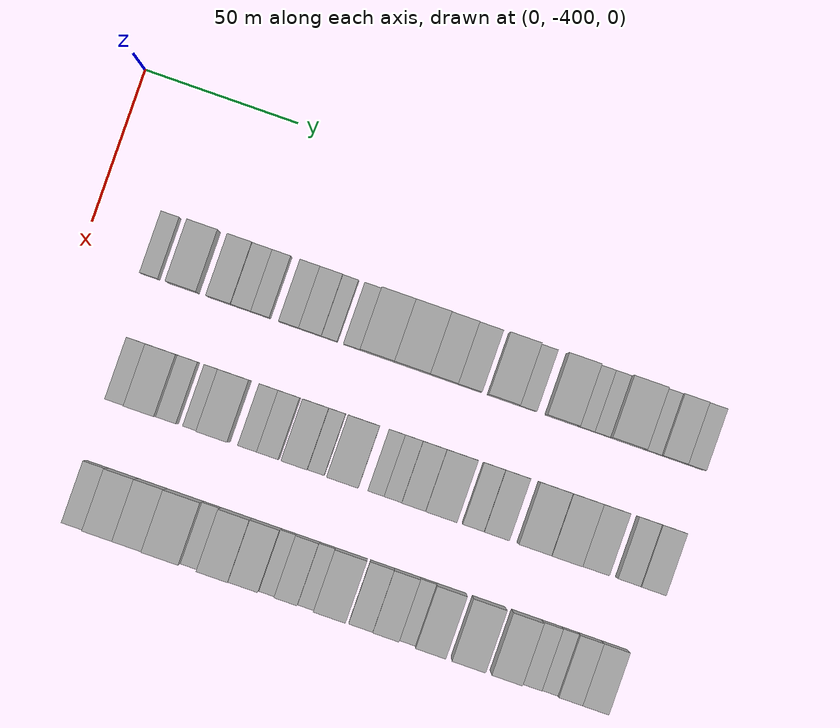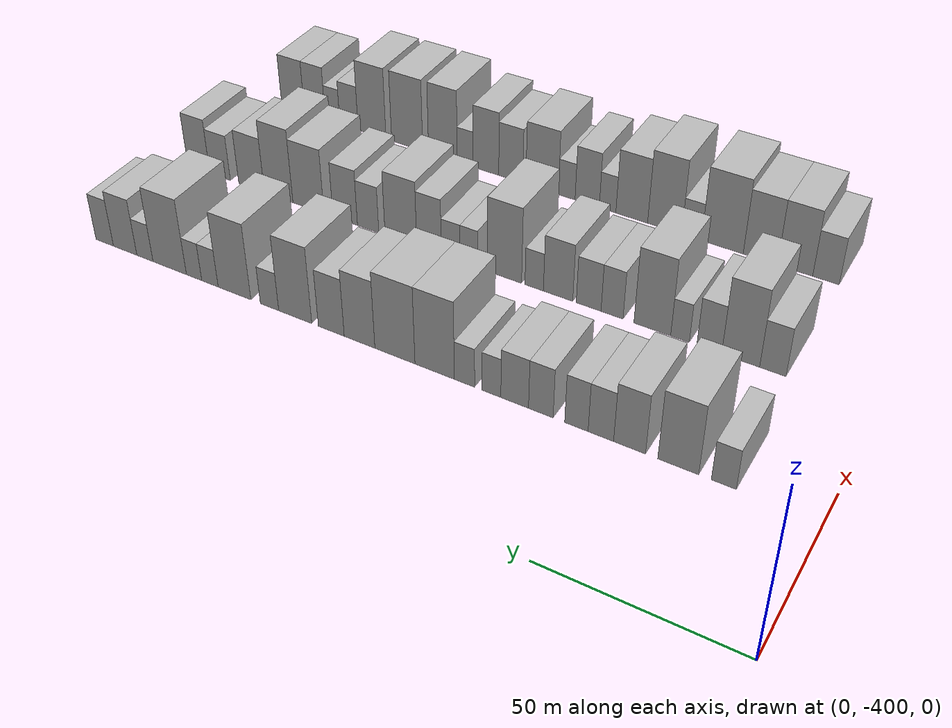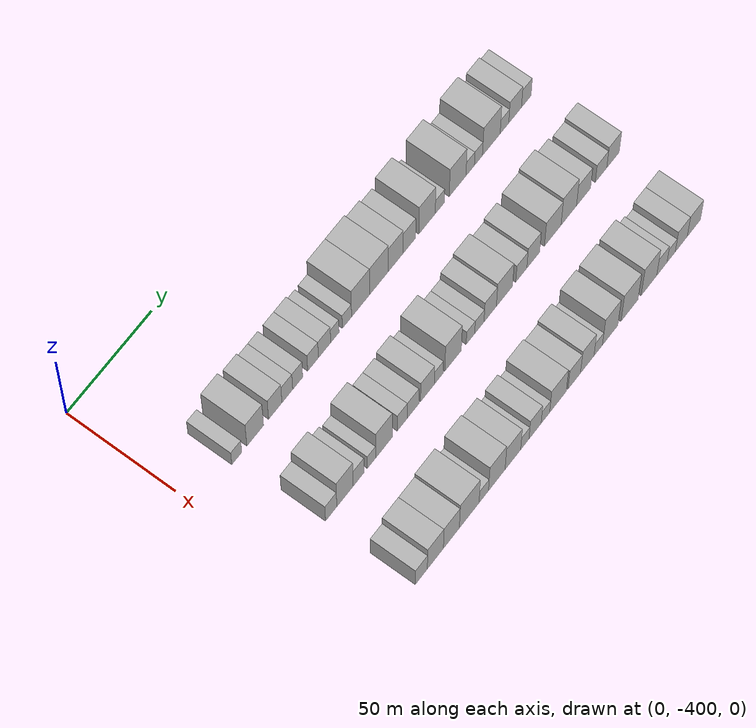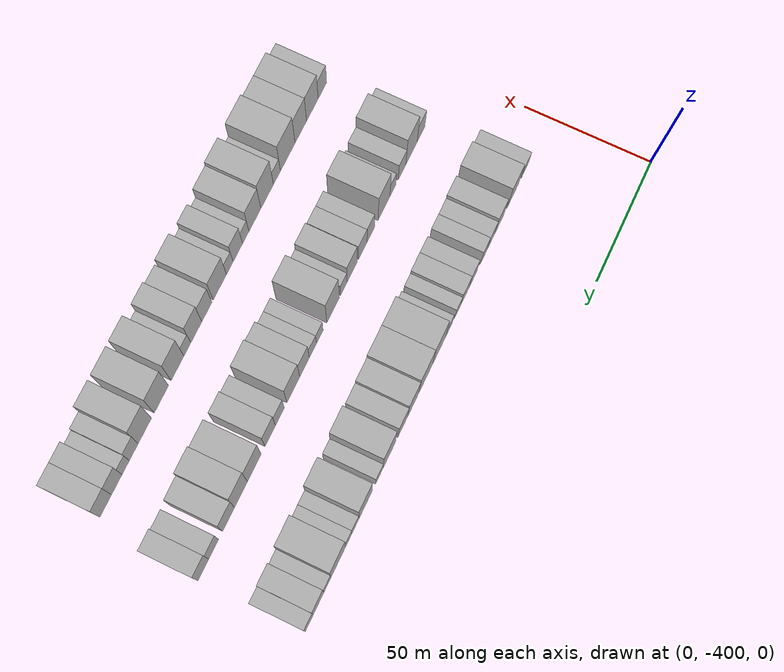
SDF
<sdf version="1.6">
 <world name="default">
  <model name="building_1">
   <static>1</static>
   <pose>50.0000 -377.0540 0 0.000000 0.000000 0.000000</pose>
   <link name="link">
    <pose>0 0 6.00 0 0 0</pose>
    <collision name="collision"><geometry><box><size>20.0000 5.8920 12.0000</size></box></geometry></collision>
    <visual name="visual">
     <cast_shadows>0</cast_shadows>
     <geometry><box><size>20.0000 5.8920 12.0000</size></box></geometry>
     <material>
      <script>
       <uri>model://HANNAS_wall/materials/scripts</uri>
       <uri>model://HANNAS_wall/materials/textures</uri>
       <name>vrc/HANNAS_wall</name>
      </script>
     </material>
    </visual>
   </link>
  </model>
  <model name="building_2">
   <static>1</static>
   <pose>50.0000 -366.1624 0 0.000000 0.000000 0.000000</pose>
   <link name="link">
    <pose>0 0 10.50 0 0 0</pose>
    <collision name="collision"><geometry><box><size>20.0000 9.8911 21.0000</size></box></geometry></collision>
    <visual name="visual">
     <cast_shadows>0</cast_shadows>
     <geometry><box><size>20.0000 9.8911 21.0000</size></box></geometry>
     <material>
      <script>
       <uri>model://HANNAS_wall/materials/scripts</uri>
       <uri>model://HANNAS_wall/materials/textures</uri>
       <name>vrc/HANNAS_wall</name>
      </script>
     </material>
    </visual>
   </link>
  </model>
  <model name="building_3">
   <static>1</static>
   <pose>50.0000 -354.2423 0 0.000000 0.000000 0.000000</pose>
   <link name="link">
    <pose>0 0 9.00 0 0 0</pose>
    <collision name="collision"><geometry><box><size>20.0000 7.9491 18.0000</size></box></geometry></collision>
    <visual name="visual">
     <cast_shadows>0</cast_shadows>
     <geometry><box><size>20.0000 7.9491 18.0000</size></box></geometry>
     <material>
      <script>
       <uri>model://HANNAS_wall/materials/scripts</uri>
       <uri>model://HANNAS_wall/materials/textures</uri>
       <name>vrc/HANNAS_wall</name>
      </script>
     </material>
    </visual>
   </link>
  </model>
  <model name="building_4">
   <static>1</static>
   <pose>50.0000 -347.0411 0 0.000000 0.000000 0.000000</pose>
   <link name="link">
    <pose>0 0 7.50 0 0 0</pose>
    <collision name="collision"><geometry><box><size>20.0000 6.4532 15.0000</size></box></geometry></collision>
    <visual name="visual">
     <cast_shadows>0</cast_shadows>
     <geometry><box><size>20.0000 6.4532 15.0000</size></box></geometry>
     <material>
      <script>
       <uri>model://HANNAS_wall/materials/scripts</uri>
       <uri>model://HANNAS_wall/materials/textures</uri>
       <name>vrc/HANNAS_wall</name>
      </script>
     </material>
    </visual>
   </link>
  </model>
  <model name="building_5">
   <static>1</static>
   <pose>50.0000 -340.8127 0 0.000000 0.000000 0.000000</pose>
   <link name="link">
    <pose>0 0 7.50 0 0 0</pose>
    <collision name="collision"><geometry><box><size>20.0000 6.0037 15.0000</size></box></geometry></collision>
    <visual name="visual">
     <cast_shadows>0</cast_shadows>
     <geometry><box><size>20.0000 6.0037 15.0000</size></box></geometry>
     <material>
      <script>
       <uri>model://HANNAS_wall/materials/scripts</uri>
       <uri>model://HANNAS_wall/materials/textures</uri>
       <name>vrc/HANNAS_wall</name>
      </script>
     </material>
    </visual>
   </link>
  </model>
  <model name="building_6">
   <static>1</static>
   <pose>50.0000 -331.5779 0 0.000000 0.000000 0.000000</pose>
   <link name="link">
    <pose>0 0 7.50 0 0 0</pose>
    <collision name="collision"><geometry><box><size>20.0000 6.4658 15.0000</size></box></geometry></collision>
    <visual name="visual">
     <cast_shadows>0</cast_shadows>
     <geometry><box><size>20.0000 6.4658 15.0000</size></box></geometry>
     <material>
      <script>
       <uri>model://HANNAS_wall/materials/scripts</uri>
       <uri>model://HANNAS_wall/materials/textures</uri>
       <name>vrc/HANNAS_wall</name>
      </script>
     </material>
    </visual>
   </link>
  </model>
  <model name="building_7">
   <static>1</static>
   <pose>50.0000 -324.6512 0 0.000000 0.000000 0.000000</pose>
   <link name="link">
    <pose>0 0 7.50 0 0 0</pose>
    <collision name="collision"><geometry><box><size>20.0000 7.3875 15.0000</size></box></geometry></collision>
    <visual name="visual">
     <cast_shadows>0</cast_shadows>
     <geometry><box><size>20.0000 7.3875 15.0000</size></box></geometry>
     <material>
      <script>
       <uri>model://HANNAS_wall/materials/scripts</uri>
       <uri>model://HANNAS_wall/materials/textures</uri>
       <name>vrc/HANNAS_wall</name>
      </script>
     </material>
    </visual>
   </link>
  </model>
  <model name="building_8">
   <static>1</static>
   <pose>50.0000 -318.4084 0 0.000000 0.000000 0.000000</pose>
   <link name="link">
    <pose>0 0 6.00 0 0 0</pose>
    <collision name="collision"><geometry><box><size>20.0000 5.0983 12.0000</size></box></geometry></collision>
    <visual name="visual">
     <cast_shadows>0</cast_shadows>
     <geometry><box><size>20.0000 5.0983 12.0000</size></box></geometry>
     <material>
      <script>
       <uri>model://HANNAS_wall/materials/scripts</uri>
       <uri>model://HANNAS_wall/materials/textures</uri>
       <name>vrc/HANNAS_wall</name>
      </script>
     </material>
    </visual>
   </link>
  </model>
  <model name="building_9">
   <static>1</static>
   <pose>50.0000 -311.0711 0 0.000000 0.000000 0.000000</pose>
   <link name="link">
    <pose>0 0 6.00 0 0 0</pose>
    <collision name="collision"><geometry><box><size>20.0000 5.5763 12.0000</size></box></geometry></collision>
    <visual name="visual">
     <cast_shadows>0</cast_shadows>
     <geometry><box><size>20.0000 5.5763 12.0000</size></box></geometry>
     <material>
      <script>
       <uri>model://HANNAS_wall/materials/scripts</uri>
       <uri>model://HANNAS_wall/materials/textures</uri>
       <name>vrc/HANNAS_wall</name>
      </script>
     </material>
    </visual>
   </link>
  </model>
  <model name="building_10">
   <static>1</static>
   <pose>50.0000 -302.7617 0 0.000000 0.000000 0.000000</pose>
   <link name="link">
    <pose>0 0 12.00 0 0 0</pose>
    <collision name="collision"><geometry><box><size>20.0000 11.0424 24.0000</size></box></geometry></collision>
    <visual name="visual">
     <cast_shadows>0</cast_shadows>
     <geometry><box><size>20.0000 11.0424 24.0000</size></box></geometry>
     <material>
      <script>
       <uri>model://HANNAS_wall/materials/scripts</uri>
       <uri>model://HANNAS_wall/materials/textures</uri>
       <name>vrc/HANNAS_wall</name>
      </script>
     </material>
    </visual>
   </link>
  </model>
  <model name="building_11">
   <static>1</static>
   <pose>50.0000 -291.4721 0 0.000000 0.000000 0.000000</pose>
   <link name="link">
    <pose>0 0 12.00 0 0 0</pose>
    <collision name="collision"><geometry><box><size>20.0000 11.5366 24.0000</size></box></geometry></collision>
    <visual name="visual">
     <cast_shadows>0</cast_shadows>
     <geometry><box><size>20.0000 11.5366 24.0000</size></box></geometry>
     <material>
      <script>
       <uri>model://HANNAS_wall/materials/scripts</uri>
       <uri>model://HANNAS_wall/materials/textures</uri>
       <name>vrc/HANNAS_wall</name>
      </script>
     </material>
    </visual>
   </link>
  </model>
  <model name="building_12">
   <static>1</static>
   <pose>50.0000 -281.1900 0 0.000000 0.000000 0.000000</pose>
   <link name="link">
    <pose>0 0 10.50 0 0 0</pose>
    <collision name="collision"><geometry><box><size>20.0000 9.0277 21.0000</size></box></geometry></collision>
    <visual name="visual">
     <cast_shadows>0</cast_shadows>
     <geometry><box><size>20.0000 9.0277 21.0000</size></box></geometry>
     <material>
      <script>
       <uri>model://HANNAS_wall/materials/scripts</uri>
       <uri>model://HANNAS_wall/materials/textures</uri>
       <name>vrc/HANNAS_wall</name>
      </script>
     </material>
    </visual>
   </link>
  </model>
  <model name="building_13">
   <static>1</static>
   <pose>50.0000 -272.8002 0 0.000000 0.000000 0.000000</pose>
   <link name="link">
    <pose>0 0 9.00 0 0 0</pose>
    <collision name="collision"><geometry><box><size>20.0000 7.7519 18.0000</size></box></geometry></collision>
    <visual name="visual">
     <cast_shadows>0</cast_shadows>
     <geometry><box><size>20.0000 7.7519 18.0000</size></box></geometry>
     <material>
      <script>
       <uri>model://HANNAS_wall/materials/scripts</uri>
       <uri>model://HANNAS_wall/materials/textures</uri>
       <name>vrc/HANNAS_wall</name>
      </script>
     </material>
    </visual>
   </link>
  </model>
  <model name="building_14">
   <static>1</static>
   <pose>50.0000 -261.8460 0 0.000000 0.000000 0.000000</pose>
   <link name="link">
    <pose>0 0 12.00 0 0 0</pose>
    <collision name="collision"><geometry><box><size>20.0000 10.1565 24.0000</size></box></geometry></collision>
    <visual name="visual">
     <cast_shadows>0</cast_shadows>
     <geometry><box><size>20.0000 10.1565 24.0000</size></box></geometry>
     <material>
      <script>
       <uri>model://HANNAS_wall/materials/scripts</uri>
       <uri>model://HANNAS_wall/materials/textures</uri>
       <name>vrc/HANNAS_wall</name>
      </script>
     </material>
    </visual>
   </link>
  </model>
  <model name="building_15">
   <static>1</static>
   <pose>50.0000 -253.9050 0 0.000000 0.000000 0.000000</pose>
   <link name="link">
    <pose>0 0 6.00 0 0 0</pose>
    <collision name="collision"><geometry><box><size>20.0000 5.7257 12.0000</size></box></geometry></collision>
    <visual name="visual">
     <cast_shadows>0</cast_shadows>
     <geometry><box><size>20.0000 5.7257 12.0000</size></box></geometry>
     <material>
      <script>
       <uri>model://HANNAS_wall/materials/scripts</uri>
       <uri>model://HANNAS_wall/materials/textures</uri>
       <name>vrc/HANNAS_wall</name>
      </script>
     </material>
    </visual>
   </link>
  </model>
  <model name="building_16">
   <static>1</static>
   <pose>50.0000 -242.8090 0 0.000000 0.000000 0.000000</pose>
   <link name="link">
    <pose>0 0 12.00 0 0 0</pose>
    <collision name="collision"><geometry><box><size>20.0000 10.4662 24.0000</size></box></geometry></collision>
    <visual name="visual">
     <cast_shadows>0</cast_shadows>
     <geometry><box><size>20.0000 10.4662 24.0000</size></box></geometry>
     <material>
      <script>
       <uri>model://HANNAS_wall/materials/scripts</uri>
       <uri>model://HANNAS_wall/materials/textures</uri>
       <name>vrc/HANNAS_wall</name>
      </script>
     </material>
    </visual>
   </link>
  </model>
  <model name="building_17">
   <static>1</static>
   <pose>50.0000 -234.9070 0 0.000000 0.000000 0.000000</pose>
   <link name="link">
    <pose>0 0 6.00 0 0 0</pose>
    <collision name="collision"><geometry><box><size>20.0000 5.3379 12.0000</size></box></geometry></collision>
    <visual name="visual">
     <cast_shadows>0</cast_shadows>
     <geometry><box><size>20.0000 5.3379 12.0000</size></box></geometry>
     <material>
      <script>
       <uri>model://HANNAS_wall/materials/scripts</uri>
       <uri>model://HANNAS_wall/materials/textures</uri>
       <name>vrc/HANNAS_wall</name>
      </script>
     </material>
    </visual>
   </link>
  </model>
  <model name="building_18">
   <static>1</static>
   <pose>50.0000 -229.7093 0 0.000000 0.000000 0.000000</pose>
   <link name="link">
    <pose>0 0 6.00 0 0 0</pose>
    <collision name="collision"><geometry><box><size>20.0000 5.0574 12.0000</size></box></geometry></collision>
    <visual name="visual">
     <cast_shadows>0</cast_shadows>
     <geometry><box><size>20.0000 5.0574 12.0000</size></box></geometry>
     <material>
      <script>
       <uri>model://HANNAS_wall/materials/scripts</uri>
       <uri>model://HANNAS_wall/materials/textures</uri>
       <name>vrc/HANNAS_wall</name>
      </script>
     </material>
    </visual>
   </link>
  </model>
  <model name="building_19">
   <static>1</static>
   <pose>50.0000 -221.5960 0 0.000000 0.000000 0.000000</pose>
   <link name="link">
    <pose>0 0 12.00 0 0 0</pose>
    <collision name="collision"><geometry><box><size>20.0000 11.1692 24.0000</size></box></geometry></collision>
    <visual name="visual">
     <cast_shadows>0</cast_shadows>
     <geometry><box><size>20.0000 11.1692 24.0000</size></box></geometry>
     <material>
      <script>
       <uri>model://HANNAS_wall/materials/scripts</uri>
       <uri>model://HANNAS_wall/materials/textures</uri>
       <name>vrc/HANNAS_wall</name>
      </script>
     </material>
    </visual>
   </link>
  </model>
  <model name="building_20">
   <static>1</static>
   <pose>50.0000 -213.2641 0 0.000000 0.000000 0.000000</pose>
   <link name="link">
    <pose>0 0 6.00 0 0 0</pose>
    <collision name="collision"><geometry><box><size>20.0000 5.4946 12.0000</size></box></geometry></collision>
    <visual name="visual">
     <cast_shadows>0</cast_shadows>
     <geometry><box><size>20.0000 5.4946 12.0000</size></box></geometry>
     <material>
      <script>
       <uri>model://HANNAS_wall/materials/scripts</uri>
       <uri>model://HANNAS_wall/materials/textures</uri>
       <name>vrc/HANNAS_wall</name>
      </script>
     </material>
    </visual>
   </link>
  </model>
  <model name="building_21">
   <static>1</static>
   <pose>50.0000 -206.4756 0 0.000000 0.000000 0.000000</pose>
   <link name="link">
    <pose>0 0 9.00 0 0 0</pose>
    <collision name="collision"><geometry><box><size>20.0000 8.0824 18.0000</size></box></geometry></collision>
    <visual name="visual">
     <cast_shadows>0</cast_shadows>
     <geometry><box><size>20.0000 8.0824 18.0000</size></box></geometry>
     <material>
      <script>
       <uri>model://HANNAS_wall/materials/scripts</uri>
       <uri>model://HANNAS_wall/materials/textures</uri>
       <name>vrc/HANNAS_wall</name>
      </script>
     </material>
    </visual>
   </link>
  </model>
  <model name="building_22">
   <static>1</static>
   <pose>50.0000 -199.3882 0 0.000000 0.000000 0.000000</pose>
   <link name="link">
    <pose>0 0 7.50 0 0 0</pose>
    <collision name="collision"><geometry><box><size>20.0000 6.0923 15.0000</size></box></geometry></collision>
    <visual name="visual">
     <cast_shadows>0</cast_shadows>
     <geometry><box><size>20.0000 6.0923 15.0000</size></box></geometry>
     <material>
      <script>
       <uri>model://HANNAS_wall/materials/scripts</uri>
       <uri>model://HANNAS_wall/materials/textures</uri>
       <name>vrc/HANNAS_wall</name>
      </script>
     </material>
    </visual>
   </link>
  </model>
  <model name="building_90">
   <static>1</static>
   <pose>90.0000 -373.6486 0 0.000000 0.000000 0.000000</pose>
   <link name="link">
    <pose>0 0 7.50 0 0 0</pose>
    <collision name="collision"><geometry><box><size>20.0000 6.7028 15.0000</size></box></geometry></collision>
    <visual name="visual">
     <cast_shadows>0</cast_shadows>
     <geometry><box><size>20.0000 6.7028 15.0000</size></box></geometry>
     <material>
      <script>
       <uri>model://HANNAS_wall/materials/scripts</uri>
       <uri>model://HANNAS_wall/materials/textures</uri>
       <name>vrc/HANNAS_wall</name>
      </script>
     </material>
    </visual>
   </link>
  </model>
  <model name="building_91">
   <static>1</static>
   <pose>90.0000 -365.4010 0 0.000000 0.000000 0.000000</pose>
   <link name="link">
    <pose>0 0 12.00 0 0 0</pose>
    <collision name="collision"><geometry><box><size>20.0000 9.7924 24.0000</size></box></geometry></collision>
    <visual name="visual">
     <cast_shadows>0</cast_shadows>
     <geometry><box><size>20.0000 9.7924 24.0000</size></box></geometry>
     <material>
      <script>
       <uri>model://HANNAS_wall/materials/scripts</uri>
       <uri>model://HANNAS_wall/materials/textures</uri>
       <name>vrc/HANNAS_wall</name>
      </script>
     </material>
    </visual>
   </link>
  </model>
  <model name="building_92">
   <static>1</static>
   <pose>90.0000 -357.2485 0 0.000000 0.000000 0.000000</pose>
   <link name="link">
    <pose>0 0 7.50 0 0 0</pose>
    <collision name="collision"><geometry><box><size>20.0000 6.5128 15.0000</size></box></geometry></collision>
    <visual name="visual">
     <cast_shadows>0</cast_shadows>
     <geometry><box><size>20.0000 6.5128 15.0000</size></box></geometry>
     <material>
      <script>
       <uri>model://HANNAS_wall/materials/scripts</uri>
       <uri>model://HANNAS_wall/materials/textures</uri>
       <name>vrc/HANNAS_wall</name>
      </script>
     </material>
    </visual>
   </link>
  </model>
  <model name="building_93">
   <static>1</static>
   <pose>90.0000 -349.5028 0 0.000000 0.000000 0.000000</pose>
   <link name="link">
    <pose>0 0 6.00 0 0 0</pose>
    <collision name="collision"><geometry><box><size>20.0000 4.9785 12.0000</size></box></geometry></collision>
    <visual name="visual">
     <cast_shadows>0</cast_shadows>
     <geometry><box><size>20.0000 4.9785 12.0000</size></box></geometry>
     <material>
      <script>
       <uri>model://HANNAS_wall/materials/scripts</uri>
       <uri>model://HANNAS_wall/materials/textures</uri>
       <name>vrc/HANNAS_wall</name>
      </script>
     </material>
    </visual>
   </link>
  </model>
  <model name="building_94">
   <static>1</static>
   <pose>90.0000 -342.0231 0 0.000000 0.000000 0.000000</pose>
   <link name="link">
    <pose>0 0 12.00 0 0 0</pose>
    <collision name="collision"><geometry><box><size>20.0000 9.9809 24.0000</size></box></geometry></collision>
    <visual name="visual">
     <cast_shadows>0</cast_shadows>
     <geometry><box><size>20.0000 9.9809 24.0000</size></box></geometry>
     <material>
      <script>
       <uri>model://HANNAS_wall/materials/scripts</uri>
       <uri>model://HANNAS_wall/materials/textures</uri>
       <name>vrc/HANNAS_wall</name>
      </script>
     </material>
    </visual>
   </link>
  </model>
  <model name="building_95">
   <static>1</static>
   <pose>90.0000 -330.9666 0 0.000000 0.000000 0.000000</pose>
   <link name="link">
    <pose>0 0 7.50 0 0 0</pose>
    <collision name="collision"><geometry><box><size>20.0000 6.1321 15.0000</size></box></geometry></collision>
    <visual name="visual">
     <cast_shadows>0</cast_shadows>
     <geometry><box><size>20.0000 6.1321 15.0000</size></box></geometry>
     <material>
      <script>
       <uri>model://HANNAS_wall/materials/scripts</uri>
       <uri>model://HANNAS_wall/materials/textures</uri>
       <name>vrc/HANNAS_wall</name>
      </script>
     </material>
    </visual>
   </link>
  </model>
  <model name="building_96">
   <static>1</static>
   <pose>90.0000 -324.4048 0 0.000000 0.000000 0.000000</pose>
   <link name="link">
    <pose>0 0 7.50 0 0 0</pose>
    <collision name="collision"><geometry><box><size>20.0000 6.9915 15.0000</size></box></geometry></collision>
    <visual name="visual">
     <cast_shadows>0</cast_shadows>
     <geometry><box><size>20.0000 6.9915 15.0000</size></box></geometry>
     <material>
      <script>
       <uri>model://HANNAS_wall/materials/scripts</uri>
       <uri>model://HANNAS_wall/materials/textures</uri>
       <name>vrc/HANNAS_wall</name>
      </script>
     </material>
    </visual>
   </link>
  </model>
  <model name="building_97">
   <static>1</static>
   <pose>90.0000 -315.6870 0 0.000000 0.000000 0.000000</pose>
   <link name="link">
    <pose>0 0 9.00 0 0 0</pose>
    <collision name="collision"><geometry><box><size>20.0000 8.4440 18.0000</size></box></geometry></collision>
    <visual name="visual">
     <cast_shadows>0</cast_shadows>
     <geometry><box><size>20.0000 8.4440 18.0000</size></box></geometry>
     <material>
      <script>
       <uri>model://HANNAS_wall/materials/scripts</uri>
       <uri>model://HANNAS_wall/materials/textures</uri>
       <name>vrc/HANNAS_wall</name>
      </script>
     </material>
    </visual>
   </link>
  </model>
  <model name="building_98">
   <static>1</static>
   <pose>90.0000 -308.7770 0 0.000000 0.000000 0.000000</pose>
   <link name="link">
    <pose>0 0 6.00 0 0 0</pose>
    <collision name="collision"><geometry><box><size>20.0000 5.3759 12.0000</size></box></geometry></collision>
    <visual name="visual">
     <cast_shadows>0</cast_shadows>
     <geometry><box><size>20.0000 5.3759 12.0000</size></box></geometry>
     <material>
      <script>
       <uri>model://HANNAS_wall/materials/scripts</uri>
       <uri>model://HANNAS_wall/materials/textures</uri>
       <name>vrc/HANNAS_wall</name>
      </script>
     </material>
    </visual>
   </link>
  </model>
  <model name="building_99">
   <static>1</static>
   <pose>90.0000 -300.0147 0 0.000000 0.000000 0.000000</pose>
   <link name="link">
    <pose>0 0 12.00 0 0 0</pose>
    <collision name="collision"><geometry><box><size>20.0000 10.1487 24.0000</size></box></geometry></collision>
    <visual name="visual">
     <cast_shadows>0</cast_shadows>
     <geometry><box><size>20.0000 10.1487 24.0000</size></box></geometry>
     <material>
      <script>
       <uri>model://HANNAS_wall/materials/scripts</uri>
       <uri>model://HANNAS_wall/materials/textures</uri>
       <name>vrc/HANNAS_wall</name>
      </script>
     </material>
    </visual>
   </link>
  </model>
  <model name="building_100">
   <static>1</static>
   <pose>90.0000 -289.2978 0 0.000000 0.000000 0.000000</pose>
   <link name="link">
    <pose>0 0 6.00 0 0 0</pose>
    <collision name="collision"><geometry><box><size>20.0000 5.2852 12.0000</size></box></geometry></collision>
    <visual name="visual">
     <cast_shadows>0</cast_shadows>
     <geometry><box><size>20.0000 5.2852 12.0000</size></box></geometry>
     <material>
      <script>
       <uri>model://HANNAS_wall/materials/scripts</uri>
       <uri>model://HANNAS_wall/materials/textures</uri>
       <name>vrc/HANNAS_wall</name>
      </script>
     </material>
    </visual>
   </link>
  </model>
  <model name="building_101">
   <static>1</static>
   <pose>90.0000 -283.7886 0 0.000000 0.000000 0.000000</pose>
   <link name="link">
    <pose>0 0 6.00 0 0 0</pose>
    <collision name="collision"><geometry><box><size>20.0000 5.7333 12.0000</size></box></geometry></collision>
    <visual name="visual">
     <cast_shadows>0</cast_shadows>
     <geometry><box><size>20.0000 5.7333 12.0000</size></box></geometry>
     <material>
      <script>
       <uri>model://HANNAS_wall/materials/scripts</uri>
       <uri>model://HANNAS_wall/materials/textures</uri>
       <name>vrc/HANNAS_wall</name>
      </script>
     </material>
    </visual>
   </link>
  </model>
  <model name="building_102">
   <static>1</static>
   <pose>90.0000 -277.0854 0 0.000000 0.000000 0.000000</pose>
   <link name="link">
    <pose>0 0 9.00 0 0 0</pose>
    <collision name="collision"><geometry><box><size>20.0000 7.6730 18.0000</size></box></geometry></collision>
    <visual name="visual">
     <cast_shadows>0</cast_shadows>
     <geometry><box><size>20.0000 7.6730 18.0000</size></box></geometry>
     <material>
      <script>
       <uri>model://HANNAS_wall/materials/scripts</uri>
       <uri>model://HANNAS_wall/materials/textures</uri>
       <name>vrc/HANNAS_wall</name>
      </script>
     </material>
    </visual>
   </link>
  </model>
  <model name="building_103">
   <static>1</static>
   <pose>90.0000 -268.2103 0 0.000000 0.000000 0.000000</pose>
   <link name="link">
    <pose>0 0 10.50 0 0 0</pose>
    <collision name="collision"><geometry><box><size>20.0000 10.0773 21.0000</size></box></geometry></collision>
    <visual name="visual">
     <cast_shadows>0</cast_shadows>
     <geometry><box><size>20.0000 10.0773 21.0000</size></box></geometry>
     <material>
      <script>
       <uri>model://HANNAS_wall/materials/scripts</uri>
       <uri>model://HANNAS_wall/materials/textures</uri>
       <name>vrc/HANNAS_wall</name>
      </script>
     </material>
    </visual>
   </link>
  </model>
  <model name="building_104">
   <static>1</static>
   <pose>90.0000 -257.7101 0 0.000000 0.000000 0.000000</pose>
   <link name="link">
    <pose>0 0 7.50 0 0 0</pose>
    <collision name="collision"><geometry><box><size>20.0000 6.9231 15.0000</size></box></geometry></collision>
    <visual name="visual">
     <cast_shadows>0</cast_shadows>
     <geometry><box><size>20.0000 6.9231 15.0000</size></box></geometry>
     <material>
      <script>
       <uri>model://HANNAS_wall/materials/scripts</uri>
       <uri>model://HANNAS_wall/materials/textures</uri>
       <name>vrc/HANNAS_wall</name>
      </script>
     </material>
    </visual>
   </link>
  </model>
  <model name="building_105">
   <static>1</static>
   <pose>90.0000 -250.2235 0 0.000000 0.000000 0.000000</pose>
   <link name="link">
    <pose>0 0 9.00 0 0 0</pose>
    <collision name="collision"><geometry><box><size>20.0000 8.0501 18.0000</size></box></geometry></collision>
    <visual name="visual">
     <cast_shadows>0</cast_shadows>
     <geometry><box><size>20.0000 8.0501 18.0000</size></box></geometry>
     <material>
      <script>
       <uri>model://HANNAS_wall/materials/scripts</uri>
       <uri>model://HANNAS_wall/materials/textures</uri>
       <name>vrc/HANNAS_wall</name>
      </script>
     </material>
    </visual>
   </link>
  </model>
  <model name="building_106">
   <static>1</static>
   <pose>90.0000 -237.9652 0 0.000000 0.000000 0.000000</pose>
   <link name="link">
    <pose>0 0 10.50 0 0 0</pose>
    <collision name="collision"><geometry><box><size>20.0000 10.4664 21.0000</size></box></geometry></collision>
    <visual name="visual">
     <cast_shadows>0</cast_shadows>
     <geometry><box><size>20.0000 10.4664 21.0000</size></box></geometry>
     <material>
      <script>
       <uri>model://HANNAS_wall/materials/scripts</uri>
       <uri>model://HANNAS_wall/materials/textures</uri>
       <name>vrc/HANNAS_wall</name>
      </script>
     </material>
    </visual>
   </link>
  </model>
  <model name="building_107">
   <static>1</static>
   <pose>90.0000 -227.8246 0 0.000000 0.000000 0.000000</pose>
   <link name="link">
    <pose>0 0 12.00 0 0 0</pose>
    <collision name="collision"><geometry><box><size>20.0000 9.8148 24.0000</size></box></geometry></collision>
    <visual name="visual">
     <cast_shadows>0</cast_shadows>
     <geometry><box><size>20.0000 9.8148 24.0000</size></box></geometry>
     <material>
      <script>
       <uri>model://HANNAS_wall/materials/scripts</uri>
       <uri>model://HANNAS_wall/materials/textures</uri>
       <name>vrc/HANNAS_wall</name>
      </script>
     </material>
    </visual>
   </link>
  </model>
  <model name="building_108">
   <static>1</static>
   <pose>90.0000 -218.4340 0 0.000000 0.000000 0.000000</pose>
   <link name="link">
    <pose>0 0 9.00 0 0 0</pose>
    <collision name="collision"><geometry><box><size>20.0000 8.9662 18.0000</size></box></geometry></collision>
    <visual name="visual">
     <cast_shadows>0</cast_shadows>
     <geometry><box><size>20.0000 8.9662 18.0000</size></box></geometry>
     <material>
      <script>
       <uri>model://HANNAS_wall/materials/scripts</uri>
       <uri>model://HANNAS_wall/materials/textures</uri>
       <name>vrc/HANNAS_wall</name>
      </script>
     </material>
    </visual>
   </link>
  </model>
  <model name="building_109">
   <static>1</static>
   <pose>90.0000 -207.2817 0 0.000000 0.000000 0.000000</pose>
   <link name="link">
    <pose>0 0 7.50 0 0 0</pose>
    <collision name="collision"><geometry><box><size>20.0000 7.3385 15.0000</size></box></geometry></collision>
    <visual name="visual">
     <cast_shadows>0</cast_shadows>
     <geometry><box><size>20.0000 7.3385 15.0000</size></box></geometry>
     <material>
      <script>
       <uri>model://HANNAS_wall/materials/scripts</uri>
       <uri>model://HANNAS_wall/materials/textures</uri>
       <name>vrc/HANNAS_wall</name>
      </script>
     </material>
    </visual>
   </link>
  </model>
  <model name="building_110">
   <static>1</static>
   <pose>90.0000 -199.6300 0 0.000000 0.000000 0.000000</pose>
   <link name="link">
    <pose>0 0 9.00 0 0 0</pose>
    <collision name="collision"><geometry><box><size>20.0000 7.9648 18.0000</size></box></geometry></collision>
    <visual name="visual">
     <cast_shadows>0</cast_shadows>
     <geometry><box><size>20.0000 7.9648 18.0000</size></box></geometry>
     <material>
      <script>
       <uri>model://HANNAS_wall/materials/scripts</uri>
       <uri>model://HANNAS_wall/materials/textures</uri>
       <name>vrc/HANNAS_wall</name>
      </script>
     </material>
    </visual>
   </link>
  </model>
  <model name="building_176">
   <static>1</static>
   <pose>130.0000 -373.4200 0 0.000000 0.000000 0.000000</pose>
   <link name="link">
    <pose>0 0 7.50 0 0 0</pose>
    <collision name="collision"><geometry><box><size>20.0000 7.1600 15.0000</size></box></geometry></collision>
    <visual name="visual">
     <cast_shadows>0</cast_shadows>
     <geometry><box><size>20.0000 7.1600 15.0000</size></box></geometry>
     <material>
      <script>
       <uri>model://HANNAS_wall/materials/scripts</uri>
       <uri>model://HANNAS_wall/materials/textures</uri>
       <name>vrc/HANNAS_wall</name>
      </script>
     </material>
    </visual>
   </link>
  </model>
  <model name="building_177">
   <static>1</static>
   <pose>130.0000 -365.0092 0 0.000000 0.000000 0.000000</pose>
   <link name="link">
    <pose>0 0 10.50 0 0 0</pose>
    <collision name="collision"><geometry><box><size>20.0000 9.6615 21.0000</size></box></geometry></collision>
    <visual name="visual">
     <cast_shadows>0</cast_shadows>
     <geometry><box><size>20.0000 9.6615 21.0000</size></box></geometry>
     <material>
      <script>
       <uri>model://HANNAS_wall/materials/scripts</uri>
       <uri>model://HANNAS_wall/materials/textures</uri>
       <name>vrc/HANNAS_wall</name>
      </script>
     </material>
    </visual>
   </link>
  </model>
  <model name="building_178">
   <static>1</static>
   <pose>130.0000 -355.3860 0 0.000000 0.000000 0.000000</pose>
   <link name="link">
    <pose>0 0 10.50 0 0 0</pose>
    <collision name="collision"><geometry><box><size>20.0000 9.5850 21.0000</size></box></geometry></collision>
    <visual name="visual">
     <cast_shadows>0</cast_shadows>
     <geometry><box><size>20.0000 9.5850 21.0000</size></box></geometry>
     <material>
      <script>
       <uri>model://HANNAS_wall/materials/scripts</uri>
       <uri>model://HANNAS_wall/materials/textures</uri>
       <name>vrc/HANNAS_wall</name>
      </script>
     </material>
    </visual>
   </link>
  </model>
  <model name="building_179">
   <static>1</static>
   <pose>130.0000 -344.6295 0 0.000000 0.000000 0.000000</pose>
   <link name="link">
    <pose>0 0 12.00 0 0 0</pose>
    <collision name="collision"><geometry><box><size>20.0000 11.9279 24.0000</size></box></geometry></collision>
    <visual name="visual">
     <cast_shadows>0</cast_shadows>
     <geometry><box><size>20.0000 11.9279 24.0000</size></box></geometry>
     <material>
      <script>
       <uri>model://HANNAS_wall/materials/scripts</uri>
       <uri>model://HANNAS_wall/materials/textures</uri>
       <name>vrc/HANNAS_wall</name>
      </script>
     </material>
    </visual>
   </link>
  </model>
  <model name="building_180">
   <static>1</static>
   <pose>130.0000 -335.7857 0 0.000000 0.000000 0.000000</pose>
   <link name="link">
    <pose>0 0 6.00 0 0 0</pose>
    <collision name="collision"><geometry><box><size>20.0000 5.7598 12.0000</size></box></geometry></collision>
    <visual name="visual">
     <cast_shadows>0</cast_shadows>
     <geometry><box><size>20.0000 5.7598 12.0000</size></box></geometry>
     <material>
      <script>
       <uri>model://HANNAS_wall/materials/scripts</uri>
       <uri>model://HANNAS_wall/materials/textures</uri>
       <name>vrc/HANNAS_wall</name>
      </script>
     </material>
    </visual>
   </link>
  </model>
  <model name="building_181">
   <static>1</static>
   <pose>130.0000 -327.8603 0 0.000000 0.000000 0.000000</pose>
   <link name="link">
    <pose>0 0 12.00 0 0 0</pose>
    <collision name="collision"><geometry><box><size>20.0000 10.0911 24.0000</size></box></geometry></collision>
    <visual name="visual">
     <cast_shadows>0</cast_shadows>
     <geometry><box><size>20.0000 10.0911 24.0000</size></box></geometry>
     <material>
      <script>
       <uri>model://HANNAS_wall/materials/scripts</uri>
       <uri>model://HANNAS_wall/materials/textures</uri>
       <name>vrc/HANNAS_wall</name>
      </script>
     </material>
    </visual>
   </link>
  </model>
  <model name="building_182">
   <static>1</static>
   <pose>130.0000 -318.0250 0 0.000000 0.000000 0.000000</pose>
   <link name="link">
    <pose>0 0 10.50 0 0 0</pose>
    <collision name="collision"><geometry><box><size>20.0000 9.5795 21.0000</size></box></geometry></collision>
    <visual name="visual">
     <cast_shadows>0</cast_shadows>
     <geometry><box><size>20.0000 9.5795 21.0000</size></box></geometry>
     <material>
      <script>
       <uri>model://HANNAS_wall/materials/scripts</uri>
       <uri>model://HANNAS_wall/materials/textures</uri>
       <name>vrc/HANNAS_wall</name>
      </script>
     </material>
    </visual>
   </link>
  </model>
  <model name="building_183">
   <static>1</static>
   <pose>130.0000 -310.6990 0 0.000000 0.000000 0.000000</pose>
   <link name="link">
    <pose>0 0 6.00 0 0 0</pose>
    <collision name="collision"><geometry><box><size>20.0000 5.0724 12.0000</size></box></geometry></collision>
    <visual name="visual">
     <cast_shadows>0</cast_shadows>
     <geometry><box><size>20.0000 5.0724 12.0000</size></box></geometry>
     <material>
      <script>
       <uri>model://HANNAS_wall/materials/scripts</uri>
       <uri>model://HANNAS_wall/materials/textures</uri>
       <name>vrc/HANNAS_wall</name>
      </script>
     </material>
    </visual>
   </link>
  </model>
  <model name="building_184">
   <static>1</static>
   <pose>130.0000 -304.4095 0 0.000000 0.000000 0.000000</pose>
   <link name="link">
    <pose>0 0 9.00 0 0 0</pose>
    <collision name="collision"><geometry><box><size>20.0000 7.5065 18.0000</size></box></geometry></collision>
    <visual name="visual">
     <cast_shadows>0</cast_shadows>
     <geometry><box><size>20.0000 7.5065 18.0000</size></box></geometry>
     <material>
      <script>
       <uri>model://HANNAS_wall/materials/scripts</uri>
       <uri>model://HANNAS_wall/materials/textures</uri>
       <name>vrc/HANNAS_wall</name>
      </script>
     </material>
    </visual>
   </link>
  </model>
  <model name="building_185">
   <static>1</static>
   <pose>130.0000 -298.0282 0 0.000000 0.000000 0.000000</pose>
   <link name="link">
    <pose>0 0 6.00 0 0 0</pose>
    <collision name="collision"><geometry><box><size>20.0000 5.2562 12.0000</size></box></geometry></collision>
    <visual name="visual">
     <cast_shadows>0</cast_shadows>
     <geometry><box><size>20.0000 5.2562 12.0000</size></box></geometry>
     <material>
      <script>
       <uri>model://HANNAS_wall/materials/scripts</uri>
       <uri>model://HANNAS_wall/materials/textures</uri>
       <name>vrc/HANNAS_wall</name>
      </script>
     </material>
    </visual>
   </link>
  </model>
  <model name="building_186">
   <static>1</static>
   <pose>130.0000 -290.2227 0 0.000000 0.000000 0.000000</pose>
   <link name="link">
    <pose>0 0 10.50 0 0 0</pose>
    <collision name="collision"><geometry><box><size>20.0000 10.3548 21.0000</size></box></geometry></collision>
    <visual name="visual">
     <cast_shadows>0</cast_shadows>
     <geometry><box><size>20.0000 10.3548 21.0000</size></box></geometry>
     <material>
      <script>
       <uri>model://HANNAS_wall/materials/scripts</uri>
       <uri>model://HANNAS_wall/materials/textures</uri>
       <name>vrc/HANNAS_wall</name>
      </script>
     </material>
    </visual>
   </link>
  </model>
  <model name="building_187">
   <static>1</static>
   <pose>130.0000 -280.1493 0 0.000000 0.000000 0.000000</pose>
   <link name="link">
    <pose>0 0 9.00 0 0 0</pose>
    <collision name="collision"><geometry><box><size>20.0000 7.7920 18.0000</size></box></geometry></collision>
    <visual name="visual">
     <cast_shadows>0</cast_shadows>
     <geometry><box><size>20.0000 7.7920 18.0000</size></box></geometry>
     <material>
      <script>
       <uri>model://HANNAS_wall/materials/scripts</uri>
       <uri>model://HANNAS_wall/materials/textures</uri>
       <name>vrc/HANNAS_wall</name>
      </script>
     </material>
    </visual>
   </link>
  </model>
  <model name="building_188">
   <static>1</static>
   <pose>130.0000 -272.0205 0 0.000000 0.000000 0.000000</pose>
   <link name="link">
    <pose>0 0 10.50 0 0 0</pose>
    <collision name="collision"><geometry><box><size>20.0000 8.4655 21.0000</size></box></geometry></collision>
    <visual name="visual">
     <cast_shadows>0</cast_shadows>
     <geometry><box><size>20.0000 8.4655 21.0000</size></box></geometry>
     <material>
      <script>
       <uri>model://HANNAS_wall/materials/scripts</uri>
       <uri>model://HANNAS_wall/materials/textures</uri>
       <name>vrc/HANNAS_wall</name>
      </script>
     </material>
    </visual>
   </link>
  </model>
  <model name="building_189">
   <static>1</static>
   <pose>130.0000 -265.1378 0 0.000000 0.000000 0.000000</pose>
   <link name="link">
    <pose>0 0 6.00 0 0 0</pose>
    <collision name="collision"><geometry><box><size>20.0000 5.2999 12.0000</size></box></geometry></collision>
    <visual name="visual">
     <cast_shadows>0</cast_shadows>
     <geometry><box><size>20.0000 5.2999 12.0000</size></box></geometry>
     <material>
      <script>
       <uri>model://HANNAS_wall/materials/scripts</uri>
       <uri>model://HANNAS_wall/materials/textures</uri>
       <name>vrc/HANNAS_wall</name>
      </script>
     </material>
    </visual>
   </link>
  </model>
  <model name="building_190">
   <static>1</static>
   <pose>130.0000 -257.6420 0 0.000000 0.000000 0.000000</pose>
   <link name="link">
    <pose>0 0 12.00 0 0 0</pose>
    <collision name="collision"><geometry><box><size>20.0000 9.6917 24.0000</size></box></geometry></collision>
    <visual name="visual">
     <cast_shadows>0</cast_shadows>
     <geometry><box><size>20.0000 9.6917 24.0000</size></box></geometry>
     <material>
      <script>
       <uri>model://HANNAS_wall/materials/scripts</uri>
       <uri>model://HANNAS_wall/materials/textures</uri>
       <name>vrc/HANNAS_wall</name>
      </script>
     </material>
    </visual>
   </link>
  </model>
  <model name="building_191">
   <static>1</static>
   <pose>130.0000 -245.4095 0 0.000000 0.000000 0.000000</pose>
   <link name="link">
    <pose>0 0 12.00 0 0 0</pose>
    <collision name="collision"><geometry><box><size>20.0000 10.7733 24.0000</size></box></geometry></collision>
    <visual name="visual">
     <cast_shadows>0</cast_shadows>
     <geometry><box><size>20.0000 10.7733 24.0000</size></box></geometry>
     <material>
      <script>
       <uri>model://HANNAS_wall/materials/scripts</uri>
       <uri>model://HANNAS_wall/materials/textures</uri>
       <name>vrc/HANNAS_wall</name>
      </script>
     </material>
    </visual>
   </link>
  </model>
  <model name="building_192">
   <static>1</static>
   <pose>130.0000 -233.0920 0 0.000000 0.000000 0.000000</pose>
   <link name="link">
    <pose>0 0 12.00 0 0 0</pose>
    <collision name="collision"><geometry><box><size>20.0000 9.8618 24.0000</size></box></geometry></collision>
    <visual name="visual">
     <cast_shadows>0</cast_shadows>
     <geometry><box><size>20.0000 9.8618 24.0000</size></box></geometry>
     <material>
      <script>
       <uri>model://HANNAS_wall/materials/scripts</uri>
       <uri>model://HANNAS_wall/materials/textures</uri>
       <name>vrc/HANNAS_wall</name>
      </script>
     </material>
    </visual>
   </link>
  </model>
  <model name="building_193">
   <static>1</static>
   <pose>130.0000 -224.8704 0 0.000000 0.000000 0.000000</pose>
   <link name="link">
    <pose>0 0 7.50 0 0 0</pose>
    <collision name="collision"><geometry><box><size>20.0000 6.5814 15.0000</size></box></geometry></collision>
    <visual name="visual">
     <cast_shadows>0</cast_shadows>
     <geometry><box><size>20.0000 6.5814 15.0000</size></box></geometry>
     <material>
      <script>
       <uri>model://HANNAS_wall/materials/scripts</uri>
       <uri>model://HANNAS_wall/materials/textures</uri>
       <name>vrc/HANNAS_wall</name>
      </script>
     </material>
    </visual>
   </link>
  </model>
  <model name="building_194">
   <static>1</static>
   <pose>130.0000 -218.9217 0 0.000000 0.000000 0.000000</pose>
   <link name="link">
    <pose>0 0 6.00 0 0 0</pose>
    <collision name="collision"><geometry><box><size>20.0000 5.3159 12.0000</size></box></geometry></collision>
    <visual name="visual">
     <cast_shadows>0</cast_shadows>
     <geometry><box><size>20.0000 5.3159 12.0000</size></box></geometry>
     <material>
      <script>
       <uri>model://HANNAS_wall/materials/scripts</uri>
       <uri>model://HANNAS_wall/materials/textures</uri>
       <name>vrc/HANNAS_wall</name>
      </script>
     </material>
    </visual>
   </link>
  </model>
  <model name="building_195">
   <static>1</static>
   <pose>130.0000 -212.4248 0 0.000000 0.000000 0.000000</pose>
   <link name="link">
    <pose>0 0 9.00 0 0 0</pose>
    <collision name="collision"><geometry><box><size>20.0000 7.6780 18.0000</size></box></geometry></collision>
    <visual name="visual">
     <cast_shadows>0</cast_shadows>
     <geometry><box><size>20.0000 7.6780 18.0000</size></box></geometry>
     <material>
      <script>
       <uri>model://HANNAS_wall/materials/scripts</uri>
       <uri>model://HANNAS_wall/materials/textures</uri>
       <name>vrc/HANNAS_wall</name>
      </script>
     </material>
    </visual>
   </link>
  </model>
  <model name="building_196">
   <static>1</static>
   <pose>130.0000 -204.3633 0 0.000000 0.000000 0.000000</pose>
   <link name="link">
    <pose>0 0 9.00 0 0 0</pose>
    <collision name="collision"><geometry><box><size>20.0000 8.4450 18.0000</size></box></geometry></collision>
    <visual name="visual">
     <cast_shadows>0</cast_shadows>
     <geometry><box><size>20.0000 8.4450 18.0000</size></box></geometry>
     <material>
      <script>
       <uri>model://HANNAS_wall/materials/scripts</uri>
       <uri>model://HANNAS_wall/materials/textures</uri>
       <name>vrc/HANNAS_wall</name>
      </script>
     </material>
    </visual>
   </link>
  </model>
 </world>
</sdf>
